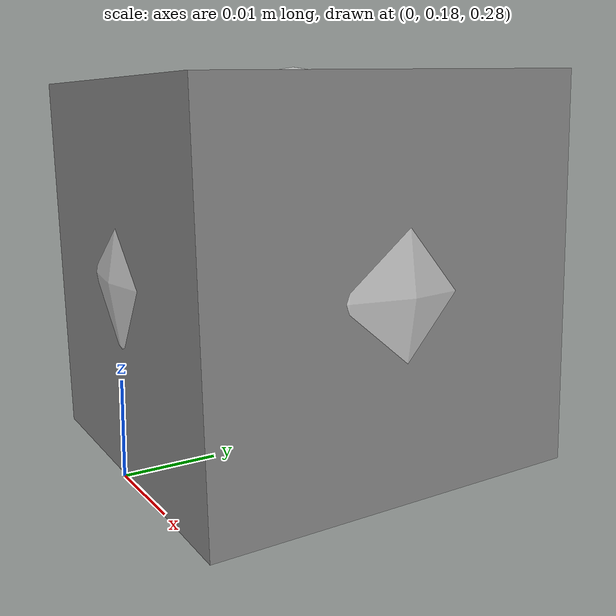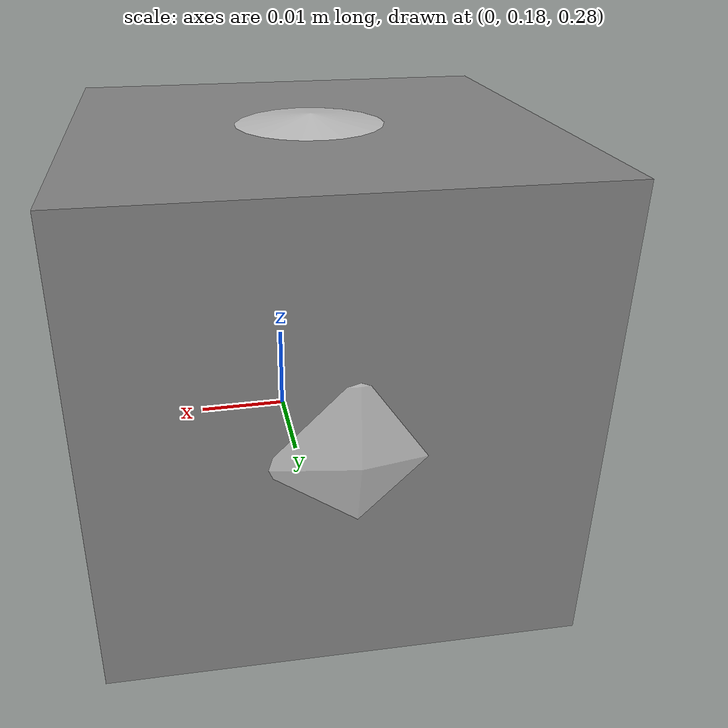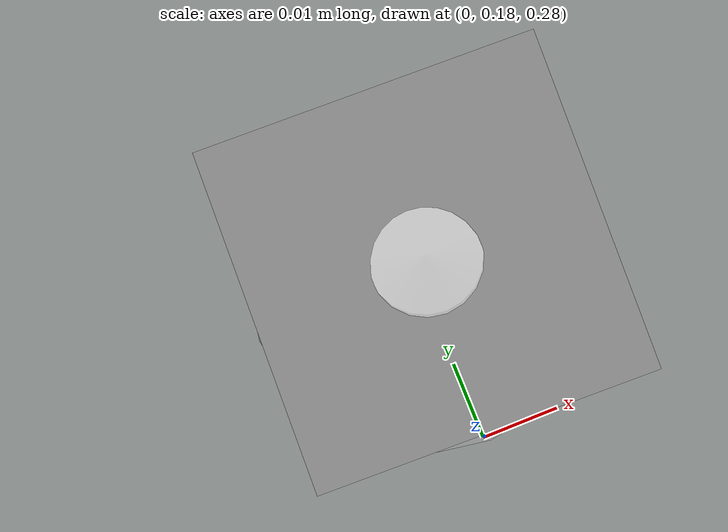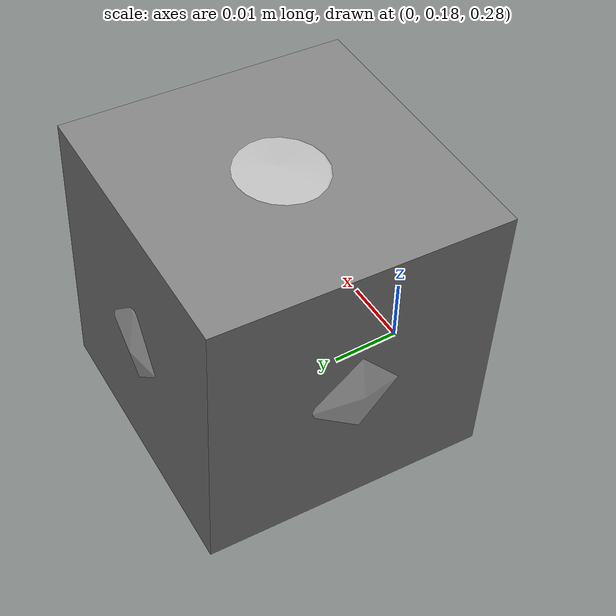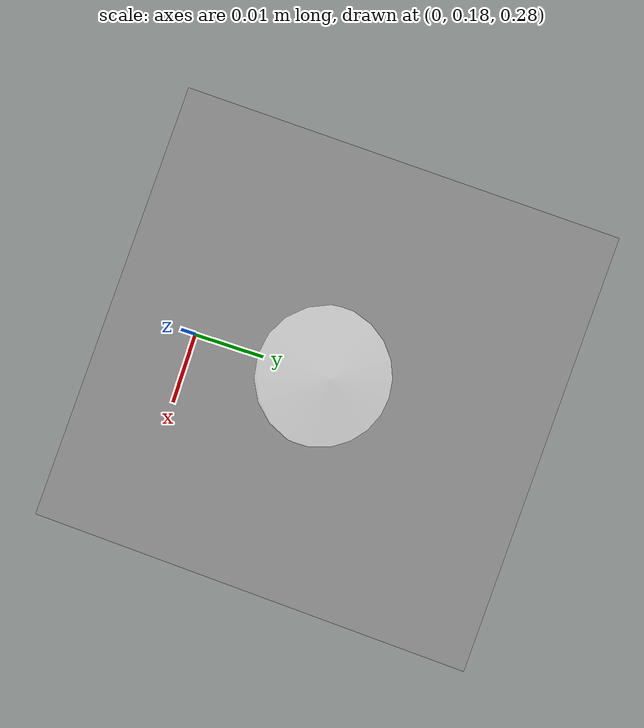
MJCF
<mujoco>
	<include file="camera.xml"/>

	<!-- sensor for camera positions -->
	<sensor>
		<actuatorpos name="Sap_rgb_camera_jointz" actuator="A_rgb_camera_jointz"/>
		<actuatorpos name="Sap_rgb_camera_jointx" actuator="A_rgb_camera_jointx"/>

		<actuatorvel name="Sav_rgb_camera_jointz" actuator="A_rgb_camera_jointz"/>
		<actuatorvel name="Sav_rgb_camera_jointx" actuator="A_rgb_camera_jointx"/>

		<actuatorfrc name="Saf_rgb_camera_jointz" actuator="A_rgb_camera_jointz"/>
		<actuatorfrc name="Saf_rgb_camera_jointx" actuator="A_rgb_camera_jointx"/>
	</sensor>

	<!-- control camera angles -->
	<actuator>
		<position name="A_rgb_camera_jointx" joint="rgb_camera_jointx"  ctrlrange="-1.57 1.57"/>
		<position name="A_rgb_camera_jointz" joint="rgb_camera_jointz"  ctrlrange="-3.141592 3.141592"/>
	</actuator>

</mujoco>

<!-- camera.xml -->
<mujoco>
	<worldbody>
		<!-- Camera base -->
		<body name="rgb_camera_base" mocap="true" pos="0 0.2 0.3">
			<geom type="sphere" conaffinity="0" contype="0" pos="0 0 0" rgba="1.0 1.0 1.0 0.5" size="0.021 0.021 0.021"/>

			<!-- Camera arm -->
			<body name="rgb_camera_arm" pos="0 0 0" axisangle="0 0 1 -1.570796">
				<geom type="box" size="0.01 0.01 0.01" zaxis="0 1 0"/>
				<joint name="rgb_camera_jointz" type="hinge" damping="0.4" pos="0 0 0" axis="0 0 1" range="-1.57 1.57"/>

				<!-- Camera head -->
				<body name="rgb_camera_head" pos="0 0.0 0" axisangle="1 0 0 1.570796">
					<joint name="rgb_camera_jointx" type="hinge" damping="0.4" pos="0 0 0" axis="1 0 0" range="-1.57 1.57"/>
					<geom type="box" size="0.02 0.02 0.02" zaxis="0 1 0"/>
					<camera name="rgb_camera" pos="0 0 0" euler="0 0 0" fovy="45" ipd="0.068"/>
				</body>
			</body>
		</body>
	</worldbody>

	<!-- weld camera base and arm: control base position -> control camera position -->
	<equality>
		<weld body1="rgb_camera_base" body2="rgb_camera_arm" solref="0.01 1" solimp=".9 .9 0.01"/>
	</equality>

</mujoco>
